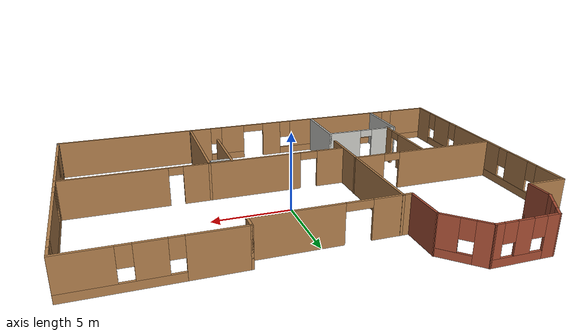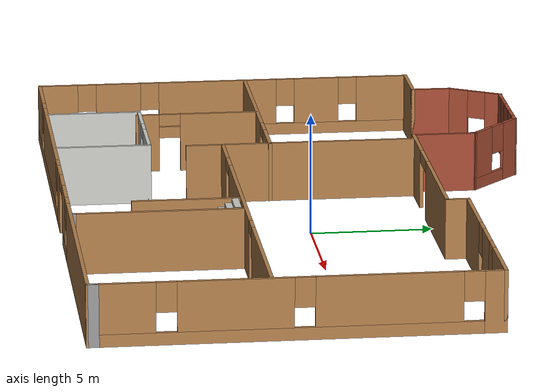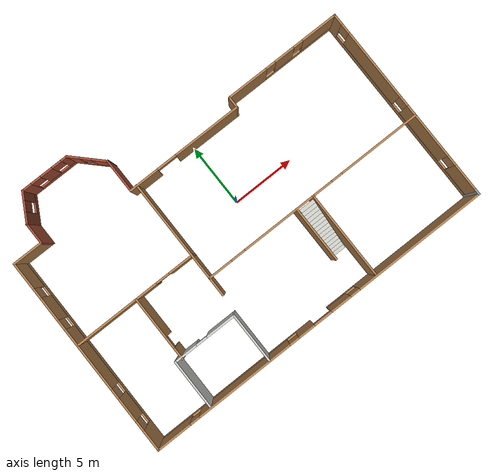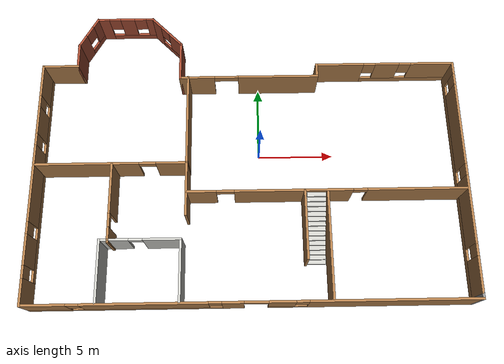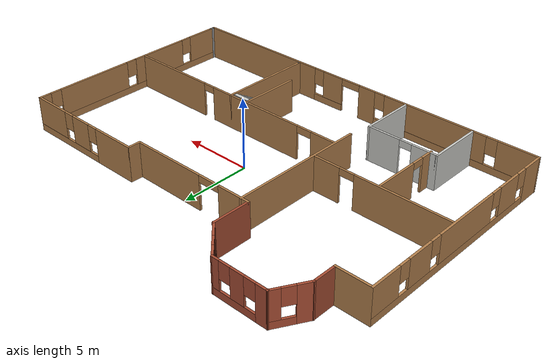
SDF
<sdf version="1.7">
 <model name="MyHome">
  <pose>-0.668255 -0.239098 0 0 -0 0</pose>
  <link name="Stairs_1">
   <visual name="Stairs_1_Visual_0">
    <pose>4.23831 -7.09651 0.083333 0 -0 -3.14159</pose>
    <geometry><box><size>1.2272 0.279705 0.166667</size></box></geometry>
    <material>
     <script><uri>file://media/materials/scripts/gazebo.material</uri><name>Gazebo/CeilingTiled</name></script>
     <ambient>1 1 1 1</ambient>
    </material>
    <meta><layer>0</layer></meta>
   </visual>
   <collision name="Stairs_1_Collision_0">
    <geometry><box><size>1.2272 0.279705 0.166667</size></box></geometry>
    <pose>4.23831 -7.09651 0.083333 0 -0 -3.14159</pose>
   </collision>
   <visual name="Stairs_1_Visual_1">
    <pose>4.23831 -6.8168 0.25 0 -0 -3.14159</pose>
    <geometry><box><size>1.2272 0.279705 0.166667</size></box></geometry>
    <material>
     <script><uri>file://media/materials/scripts/gazebo.material</uri><name>Gazebo/CeilingTiled</name></script>
     <ambient>1 1 1 1</ambient>
    </material>
    <meta><layer>0</layer></meta>
   </visual>
   <collision name="Stairs_1_Collision_1">
    <geometry><box><size>1.2272 0.279705 0.166667</size></box></geometry>
    <pose>4.23831 -6.8168 0.25 0 -0 -3.14159</pose>
   </collision>
   <visual name="Stairs_1_Visual_2">
    <pose>4.23831 -6.5371 0.416667 0 -0 -3.14159</pose>
    <geometry><box><size>1.2272 0.279705 0.166667</size></box></geometry>
    <material>
     <script><uri>file://media/materials/scripts/gazebo.material</uri><name>Gazebo/CeilingTiled</name></script>
     <ambient>1 1 1 1</ambient>
    </material>
    <meta><layer>0</layer></meta>
   </visual>
   <collision name="Stairs_1_Collision_2">
    <geometry><box><size>1.2272 0.279705 0.166667</size></box></geometry>
    <pose>4.23831 -6.5371 0.416667 0 -0 -3.14159</pose>
   </collision>
   <visual name="Stairs_1_Visual_3">
    <pose>4.23831 -6.25739 0.583333 0 -0 -3.14159</pose>
    <geometry><box><size>1.2272 0.279705 0.166667</size></box></geometry>
    <material>
     <script><uri>file://media/materials/scripts/gazebo.material</uri><name>Gazebo/CeilingTiled</name></script>
     <ambient>1 1 1 1</ambient>
    </material>
    <meta><layer>0</layer></meta>
   </visual>
   <collision name="Stairs_1_Collision_3">
    <geometry><box><size>1.2272 0.279705 0.166667</size></box></geometry>
    <pose>4.23831 -6.25739 0.583333 0 -0 -3.14159</pose>
   </collision>
   <visual name="Stairs_1_Visual_4">
    <pose>4.23831 -5.97769 0.75 0 -0 -3.14159</pose>
    <geometry><box><size>1.2272 0.279705 0.166667</size></box></geometry>
    <material>
     <script><uri>file://media/materials/scripts/gazebo.material</uri><name>Gazebo/CeilingTiled</name></script>
     <ambient>1 1 1 1</ambient>
    </material>
    <meta><layer>0</layer></meta>
   </visual>
   <collision name="Stairs_1_Collision_4">
    <geometry><box><size>1.2272 0.279705 0.166667</size></box></geometry>
    <pose>4.23831 -5.97769 0.75 0 -0 -3.14159</pose>
   </collision>
   <visual name="Stairs_1_Visual_5">
    <pose>4.23831 -5.69798 0.916667 0 -0 -3.14159</pose>
    <geometry><box><size>1.2272 0.279705 0.166667</size></box></geometry>
    <material>
     <script><uri>file://media/materials/scripts/gazebo.material</uri><name>Gazebo/CeilingTiled</name></script>
     <ambient>1 1 1 1</ambient>
    </material>
    <meta><layer>0</layer></meta>
   </visual>
   <collision name="Stairs_1_Collision_5">
    <geometry><box><size>1.2272 0.279705 0.166667</size></box></geometry>
    <pose>4.23831 -5.69798 0.916667 0 -0 -3.14159</pose>
   </collision>
   <visual name="Stairs_1_Visual_6">
    <pose>4.23831 -5.41828 1.08333 0 -0 -3.14159</pose>
    <geometry><box><size>1.2272 0.279705 0.166667</size></box></geometry>
    <material>
     <script><uri>file://media/materials/scripts/gazebo.material</uri><name>Gazebo/CeilingTiled</name></script>
     <ambient>1 1 1 1</ambient>
    </material>
    <meta><layer>0</layer></meta>
   </visual>
   <collision name="Stairs_1_Collision_6">
    <geometry><box><size>1.2272 0.279705 0.166667</size></box></geometry>
    <pose>4.23831 -5.41828 1.08333 0 -0 -3.14159</pose>
   </collision>
   <visual name="Stairs_1_Visual_7">
    <pose>4.23831 -5.13857 1.25 0 -0 -3.14159</pose>
    <geometry><box><size>1.2272 0.279705 0.166667</size></box></geometry>
    <material>
     <script><uri>file://media/materials/scripts/gazebo.material</uri><name>Gazebo/CeilingTiled</name></script>
     <ambient>1 1 1 1</ambient>
    </material>
    <meta><layer>0</layer></meta>
   </visual>
   <collision name="Stairs_1_Collision_7">
    <geometry><box><size>1.2272 0.279705 0.166667</size></box></geometry>
    <pose>4.23831 -5.13857 1.25 0 -0 -3.14159</pose>
   </collision>
   <visual name="Stairs_1_Visual_8">
    <pose>4.23831 -4.85887 1.41667 0 -0 -3.14159</pose>
    <geometry><box><size>1.2272 0.279705 0.166667</size></box></geometry>
    <material>
     <script><uri>file://media/materials/scripts/gazebo.material</uri><name>Gazebo/CeilingTiled</name></script>
     <ambient>1 1 1 1</ambient>
    </material>
    <meta><layer>0</layer></meta>
   </visual>
   <collision name="Stairs_1_Collision_8">
    <geometry><box><size>1.2272 0.279705 0.166667</size></box></geometry>
    <pose>4.23831 -4.85887 1.41667 0 -0 -3.14159</pose>
   </collision>
   <visual name="Stairs_1_Visual_9">
    <pose>4.23831 -4.57916 1.58333 0 -0 -3.14159</pose>
    <geometry><box><size>1.2272 0.279705 0.166667</size></box></geometry>
    <material>
     <script><uri>file://media/materials/scripts/gazebo.material</uri><name>Gazebo/CeilingTiled</name></script>
     <ambient>1 1 1 1</ambient>
    </material>
    <meta><layer>0</layer></meta>
   </visual>
   <collision name="Stairs_1_Collision_9">
    <geometry><box><size>1.2272 0.279705 0.166667</size></box></geometry>
    <pose>4.23831 -4.57916 1.58333 0 -0 -3.14159</pose>
   </collision>
   <visual name="Stairs_1_Visual_10">
    <pose>4.23831 -4.29946 1.75 0 -0 -3.14159</pose>
    <geometry><box><size>1.2272 0.279705 0.166667</size></box></geometry>
    <material>
     <script><uri>file://media/materials/scripts/gazebo.material</uri><name>Gazebo/CeilingTiled</name></script>
     <ambient>1 1 1 1</ambient>
    </material>
    <meta><layer>0</layer></meta>
   </visual>
   <collision name="Stairs_1_Collision_10">
    <geometry><box><size>1.2272 0.279705 0.166667</size></box></geometry>
    <pose>4.23831 -4.29946 1.75 0 -0 -3.14159</pose>
   </collision>
   <visual name="Stairs_1_Visual_11">
    <pose>4.23831 -4.01975 1.91667 0 -0 -3.14159</pose>
    <geometry><box><size>1.2272 0.279705 0.166667</size></box></geometry>
    <material>
     <script><uri>file://media/materials/scripts/gazebo.material</uri><name>Gazebo/CeilingTiled</name></script>
     <ambient>1 1 1 1</ambient>
    </material>
    <meta><layer>0</layer></meta>
   </visual>
   <collision name="Stairs_1_Collision_11">
    <geometry><box><size>1.2272 0.279705 0.166667</size></box></geometry>
    <pose>4.23831 -4.01975 1.91667 0 -0 -3.14159</pose>
   </collision>
   <visual name="Stairs_1_Visual_12">
    <pose>4.23831 -3.74005 2.08333 0 -0 -3.14159</pose>
    <geometry><box><size>1.2272 0.279705 0.166667</size></box></geometry>
    <material>
     <script><uri>file://media/materials/scripts/gazebo.material</uri><name>Gazebo/CeilingTiled</name></script>
     <ambient>1 1 1 1</ambient>
    </material>
    <meta><layer>0</layer></meta>
   </visual>
   <collision name="Stairs_1_Collision_12">
    <geometry><box><size>1.2272 0.279705 0.166667</size></box></geometry>
    <pose>4.23831 -3.74005 2.08333 0 -0 -3.14159</pose>
   </collision>
   <visual name="Stairs_1_Visual_13">
    <pose>4.23831 -3.46034 2.25 0 -0 -3.14159</pose>
    <geometry><box><size>1.2272 0.279705 0.166667</size></box></geometry>
    <material>
     <script><uri>file://media/materials/scripts/gazebo.material</uri><name>Gazebo/CeilingTiled</name></script>
     <ambient>1 1 1 1</ambient>
    </material>
    <meta><layer>0</layer></meta>
   </visual>
   <collision name="Stairs_1_Collision_13">
    <geometry><box><size>1.2272 0.279705 0.166667</size></box></geometry>
    <pose>4.23831 -3.46034 2.25 0 -0 -3.14159</pose>
   </collision>
   <visual name="Stairs_1_Visual_14">
    <pose>4.23831 -3.18064 2.41667 0 -0 -3.14159</pose>
    <geometry><box><size>1.2272 0.279705 0.166667</size></box></geometry>
    <material>
     <script><uri>file://media/materials/scripts/gazebo.material</uri><name>Gazebo/CeilingTiled</name></script>
     <ambient>1 1 1 1</ambient>
    </material>
    <meta><layer>0</layer></meta>
   </visual>
   <collision name="Stairs_1_Collision_14">
    <geometry><box><size>1.2272 0.279705 0.166667</size></box></geometry>
    <pose>4.23831 -3.18064 2.41667 0 -0 -3.14159</pose>
   </collision>
  </link>
  <link name="Wall_0">
   <pose>-14.0451 -1.83309 0 0 -0 1.5708</pose>
   <visual name="Wall_0_Visual_0">
    <pose>-7.26027 0 1.25 0 -0 0</pose>
    <geometry><box><size>1.72945 0.15 2.5</size></box></geometry>
    <material>
     <script><uri>file://media/materials/scripts/gazebo.material</uri><name>Gazebo/Wood</name></script>
     <ambient>1 1 1 1</ambient>
    </material>
    <meta><layer>0</layer></meta>
   </visual>
   <collision name="Wall_0_Collision_0">
    <geometry><box><size>1.72945 0.15 2.5</size></box></geometry>
    <pose>-7.26027 0 1.25 0 -0 0</pose>
   </collision>
   <visual name="Wall_0_Visual_1">
    <pose>0.864726 0 0.25 0 -0 0</pose>
    <geometry><box><size>14.5205 0.15 0.5</size></box></geometry>
    <material>
     <script><uri>file://media/materials/scripts/gazebo.material</uri><name>Gazebo/Wood</name></script>
     <ambient>1 1 1 1</ambient>
    </material>
    <meta><layer>0</layer></meta>
   </visual>
   <collision name="Wall_0_Collision_1">
    <geometry><box><size>14.5205 0.15 0.5</size></box></geometry>
    <pose>0.864726 0 0.25 0 -0 0</pose>
   </collision>
   <visual name="Wall_0_Visual_2">
    <pose>-4.62228 0 1.5 0 -0 0</pose>
    <geometry><box><size>1.94653 0.15 2</size></box></geometry>
    <material>
     <script><uri>file://media/materials/scripts/gazebo.material</uri><name>Gazebo/Wood</name></script>
     <ambient>1 1 1 1</ambient>
    </material>
    <meta><layer>0</layer></meta>
   </visual>
   <collision name="Wall_0_Collision_2">
    <geometry><box><size>1.94653 0.15 2</size></box></geometry>
    <pose>-4.62228 0 1.5 0 -0 0</pose>
   </collision>
   <visual name="Wall_0_Visual_3">
    <pose>-0.265957 0 1.5 0 -0 0</pose>
    <geometry><box><size>5.16612 0.15 2</size></box></geometry>
    <material>
     <script><uri>file://media/materials/scripts/gazebo.material</uri><name>Gazebo/Wood</name></script>
     <ambient>1 1 1 1</ambient>
    </material>
    <meta><layer>0</layer></meta>
   </visual>
   <collision name="Wall_0_Collision_3">
    <geometry><box><size>5.16612 0.15 2</size></box></geometry>
    <pose>-0.265957 0 1.5 0 -0 0</pose>
   </collision>
   <visual name="Wall_0_Visual_4">
    <pose>4.0919 0 1.5 0 -0 0</pose>
    <geometry><box><size>1.9496 0.15 2</size></box></geometry>
    <material>
     <script><uri>file://media/materials/scripts/gazebo.material</uri><name>Gazebo/Wood</name></script>
     <ambient>1 1 1 1</ambient>
    </material>
    <meta><layer>0</layer></meta>
   </visual>
   <collision name="Wall_0_Collision_4">
    <geometry><box><size>1.9496 0.15 2</size></box></geometry>
    <pose>4.0919 0 1.5 0 -0 0</pose>
   </collision>
   <visual name="Wall_0_Visual_5">
    <pose>6.99585 0 1.5 0 -0 0</pose>
    <geometry><box><size>2.25829 0.15 2</size></box></geometry>
    <material>
     <script><uri>file://media/materials/scripts/gazebo.material</uri><name>Gazebo/Wood</name></script>
     <ambient>1 1 1 1</ambient>
    </material>
    <meta><layer>0</layer></meta>
   </visual>
   <collision name="Wall_0_Collision_5">
    <geometry><box><size>2.25829 0.15 2</size></box></geometry>
    <pose>6.99585 0 1.5 0 -0 0</pose>
   </collision>
   <visual name="Wall_0_Visual_6">
    <pose>-5.99555 0 1.9 0 -0 0</pose>
    <geometry><box><size>0.8 0.15 1.2</size></box></geometry>
    <material>
     <script><uri>file://media/materials/scripts/gazebo.material</uri><name>Gazebo/Wood</name></script>
     <ambient>1 1 1 1</ambient>
    </material>
    <meta><layer>0</layer></meta>
   </visual>
   <collision name="Wall_0_Collision_6">
    <geometry><box><size>0.8 0.15 1.2</size></box></geometry>
    <pose>-5.99555 0 1.9 0 -0 0</pose>
   </collision>
   <visual name="Wall_0_Visual_7">
    <pose>-3.24902 0 1.9 0 -0 0</pose>
    <geometry><box><size>0.8 0.15 1.2</size></box></geometry>
    <material>
     <script><uri>file://media/materials/scripts/gazebo.material</uri><name>Gazebo/Wood</name></script>
     <ambient>1 1 1 1</ambient>
    </material>
    <meta><layer>0</layer></meta>
   </visual>
   <collision name="Wall_0_Collision_7">
    <geometry><box><size>0.8 0.15 1.2</size></box></geometry>
    <pose>-3.24902 0 1.9 0 -0 0</pose>
   </collision>
   <visual name="Wall_0_Visual_8">
    <pose>2.7171 0 1.9 0 -0 0</pose>
    <geometry><box><size>0.8 0.15 1.2</size></box></geometry>
    <material>
     <script><uri>file://media/materials/scripts/gazebo.material</uri><name>Gazebo/Wood</name></script>
     <ambient>1 1 1 1</ambient>
    </material>
    <meta><layer>0</layer></meta>
   </visual>
   <collision name="Wall_0_Collision_8">
    <geometry><box><size>0.8 0.15 1.2</size></box></geometry>
    <pose>2.7171 0 1.9 0 -0 0</pose>
   </collision>
   <visual name="Wall_0_Visual_9">
    <pose>5.46671 0 1.9 0 -0 0</pose>
    <geometry><box><size>0.8 0.15 1.2</size></box></geometry>
    <material>
     <script><uri>file://media/materials/scripts/gazebo.material</uri><name>Gazebo/Wood</name></script>
     <ambient>1 1 1 1</ambient>
    </material>
    <meta><layer>0</layer></meta>
   </visual>
   <collision name="Wall_0_Collision_9">
    <geometry><box><size>0.8 0.15 1.2</size></box></geometry>
    <pose>5.46671 0 1.9 0 -0 0</pose>
   </collision>
  </link>
  <link name="Wall_1">
   <collision name="Wall_1_Collision">
    <geometry><box><size>2.5 0.15 2.5</size></box></geometry>
    <pose>0 0 1.25 0 -0 0</pose>
   </collision>
   <visual name="Wall_1_Visual">
    <pose>0 0 1.25 0 -0 0</pose>
    <geometry><box><size>2.5 0.15 2.5</size></box></geometry>
    <material>
     <script><uri>file://media/materials/scripts/gazebo.material</uri><name>Gazebo/Wood</name></script>
     <ambient>1 1 1 1</ambient>
    </material>
    <meta><layer>0</layer></meta>
   </visual>
   <pose>-12.8701 6.21691 0 0 -0 0</pose>
  </link>
  <link name="Wall_10">
   <collision name="Wall_10_Collision">
    <geometry><box><size>2.75 0.15 2.5</size></box></geometry>
    <pose>0 0 1.25 0 -0 0</pose>
   </collision>
   <visual name="Wall_10_Visual">
    <pose>0 0 1.25 0 -0 0</pose>
    <geometry><box><size>2.75 0.15 2.5</size></box></geometry>
    <material>
     <script><uri>file://media/materials/scripts/gazebo.material</uri><name>Gazebo/Bricks</name></script>
     <ambient>1 1 1 1</ambient>
    </material>
    <meta><layer>0</layer></meta>
   </visual>
   <pose>-4.65487 6.53682 0 0 -0 -1.5708</pose>
  </link>
  <link name="Wall_11">
   <pose>0.020127 5.23682 0 0 -0 0</pose>
   <visual name="Wall_11_Visual_0">
    <pose>-3.54179 0 1.25 0 -0 0</pose>
    <geometry><box><size>2.41642 0.15 2.5</size></box></geometry>
    <material>
     <script><uri>file://media/materials/scripts/gazebo.material</uri><name>Gazebo/Wood</name></script>
     <ambient>1 1 1 1</ambient>
    </material>
    <meta><layer>0</layer></meta>
   </visual>
   <collision name="Wall_11_Collision_0">
    <geometry><box><size>2.41642 0.15 2.5</size></box></geometry>
    <pose>-3.54179 0 1.25 0 -0 0</pose>
   </collision>
   <visual name="Wall_11_Visual_1">
    <pose>2.0177 0 1.25 0 -0 0</pose>
    <geometry><box><size>5.4646 0.15 2.5</size></box></geometry>
    <material>
     <script><uri>file://media/materials/scripts/gazebo.material</uri><name>Gazebo/Wood</name></script>
     <ambient>1 1 1 1</ambient>
    </material>
    <meta><layer>0</layer></meta>
   </visual>
   <collision name="Wall_11_Collision_1">
    <geometry><box><size>5.4646 0.15 2.5</size></box></geometry>
    <pose>2.0177 0 1.25 0 -0 0</pose>
   </collision>
   <visual name="Wall_11_Visual_2">
    <pose>-1.52408 0 2.25 0 -0 0</pose>
    <geometry><box><size>1.61898 0.15 0.5</size></box></geometry>
    <material>
     <script><uri>file://media/materials/scripts/gazebo.material</uri><name>Gazebo/Wood</name></script>
     <ambient>1 1 1 1</ambient>
    </material>
    <meta><layer>0</layer></meta>
   </visual>
   <collision name="Wall_11_Collision_2">
    <geometry><box><size>1.61898 0.15 0.5</size></box></geometry>
    <pose>-1.52408 0 2.25 0 -0 0</pose>
   </collision>
  </link>
  <link name="Wall_12">
   <collision name="Wall_12_Collision">
    <geometry><box><size>1 0.15 2.5</size></box></geometry>
    <pose>0 0 1.25 0 -0 0</pose>
   </collision>
   <visual name="Wall_12_Visual">
    <pose>0 0 1.25 0 -0 0</pose>
    <geometry><box><size>1 0.15 2.5</size></box></geometry>
    <material>
     <script><uri>file://media/materials/scripts/gazebo.material</uri><name>Gazebo/Wood</name></script>
     <ambient>1 1 1 1</ambient>
    </material>
    <meta><layer>0</layer></meta>
   </visual>
   <pose>4.69513 5.66182 0 0 -0 1.5708</pose>
  </link>
  <link name="Wall_13">
   <pose>9.37013 6.08682 0 0 -0 0</pose>
   <visual name="Wall_13_Visual_0">
    <pose>-3.08641 0 1.25 0 -0 0</pose>
    <geometry><box><size>3.32717 0.15 2.5</size></box></geometry>
    <material>
     <script><uri>file://media/materials/scripts/gazebo.material</uri><name>Gazebo/Wood</name></script>
     <ambient>1 1 1 1</ambient>
    </material>
    <meta><layer>0</layer></meta>
   </visual>
   <collision name="Wall_13_Collision_0">
    <geometry><box><size>3.32717 0.15 2.5</size></box></geometry>
    <pose>-3.08641 0 1.25 0 -0 0</pose>
   </collision>
   <visual name="Wall_13_Visual_1">
    <pose>1.66359 0 0.25 0 -0 0</pose>
    <geometry><box><size>6.17282 0.15 0.5</size></box></geometry>
    <material>
     <script><uri>file://media/materials/scripts/gazebo.material</uri><name>Gazebo/Wood</name></script>
     <ambient>1 1 1 1</ambient>
    </material>
    <meta><layer>0</layer></meta>
   </visual>
   <collision name="Wall_13_Collision_1">
    <geometry><box><size>6.17282 0.15 0.5</size></box></geometry>
    <pose>1.66359 0 0.25 0 -0 0</pose>
   </collision>
   <visual name="Wall_13_Visual_2">
    <pose>0.197364 0 1.5 0 -0 0</pose>
    <geometry><box><size>1.64038 0.15 2</size></box></geometry>
    <material>
     <script><uri>file://media/materials/scripts/gazebo.material</uri><name>Gazebo/Wood</name></script>
     <ambient>1 1 1 1</ambient>
    </material>
    <meta><layer>0</layer></meta>
   </visual>
   <collision name="Wall_13_Collision_2">
    <geometry><box><size>1.64038 0.15 2</size></box></geometry>
    <pose>0.197364 0 1.5 0 -0 0</pose>
   </collision>
   <visual name="Wall_13_Visual_3">
    <pose>3.28378 0 1.5 0 -0 0</pose>
    <geometry><box><size>2.93245 0.15 2</size></box></geometry>
    <material>
     <script><uri>file://media/materials/scripts/gazebo.material</uri><name>Gazebo/Wood</name></script>
     <ambient>1 1 1 1</ambient>
    </material>
    <meta><layer>0</layer></meta>
   </visual>
   <collision name="Wall_13_Collision_3">
    <geometry><box><size>2.93245 0.15 2</size></box></geometry>
    <pose>3.28378 0 1.5 0 -0 0</pose>
   </collision>
   <visual name="Wall_13_Visual_4">
    <pose>-1.02283 0 1.9 0 -0 0</pose>
    <geometry><box><size>0.8 0.15 1.2</size></box></geometry>
    <material>
     <script><uri>file://media/materials/scripts/gazebo.material</uri><name>Gazebo/Wood</name></script>
     <ambient>1 1 1 1</ambient>
    </material>
    <meta><layer>0</layer></meta>
   </visual>
   <collision name="Wall_13_Collision_4">
    <geometry><box><size>0.8 0.15 1.2</size></box></geometry>
    <pose>-1.02283 0 1.9 0 -0 0</pose>
   </collision>
   <visual name="Wall_13_Visual_5">
    <pose>1.41755 0 1.9 0 -0 0</pose>
    <geometry><box><size>0.8 0.15 1.2</size></box></geometry>
    <material>
     <script><uri>file://media/materials/scripts/gazebo.material</uri><name>Gazebo/Wood</name></script>
     <ambient>1 1 1 1</ambient>
    </material>
    <meta><layer>0</layer></meta>
   </visual>
   <collision name="Wall_13_Collision_5">
    <geometry><box><size>0.8 0.15 1.2</size></box></geometry>
    <pose>1.41755 0 1.9 0 -0 0</pose>
   </collision>
  </link>
  <link name="Wall_14">
   <pose>14.0451 -1.71318 0 0 -0 -1.5708</pose>
   <visual name="Wall_14_Visual_0">
    <pose>-7.43229 0 1.25 0 -0 0</pose>
    <geometry><box><size>0.88541 0.15 2.5</size></box></geometry>
    <material>
     <script><uri>file://media/materials/scripts/gazebo.material</uri><name>Gazebo/Wood</name></script>
     <ambient>1 1 1 1</ambient>
    </material>
    <meta><layer>0</layer></meta>
   </visual>
   <collision name="Wall_14_Collision_0">
    <geometry><box><size>0.88541 0.15 2.5</size></box></geometry>
    <pose>-7.43229 0 1.25 0 -0 0</pose>
   </collision>
   <visual name="Wall_14_Visual_1">
    <pose>0.442705 0 0.25 0 -0 0</pose>
    <geometry><box><size>14.8646 0.15 0.5</size></box></geometry>
    <material>
     <script><uri>file://media/materials/scripts/gazebo.material</uri><name>Gazebo/Wood</name></script>
     <ambient>1 1 1 1</ambient>
    </material>
    <meta><layer>0</layer></meta>
   </visual>
   <collision name="Wall_14_Collision_1">
    <geometry><box><size>14.8646 0.15 0.5</size></box></geometry>
    <pose>0.442705 0 0.25 0 -0 0</pose>
   </collision>
   <visual name="Wall_14_Visual_2">
    <pose>-3.34546 0 1.5 0 -0 0</pose>
    <geometry><box><size>5.68826 0.15 2</size></box></geometry>
    <material>
     <script><uri>file://media/materials/scripts/gazebo.material</uri><name>Gazebo/Wood</name></script>
     <ambient>1 1 1 1</ambient>
    </material>
    <meta><layer>0</layer></meta>
   </visual>
   <collision name="Wall_14_Collision_2">
    <geometry><box><size>5.68826 0.15 2</size></box></geometry>
    <pose>-3.34546 0 1.5 0 -0 0</pose>
   </collision>
   <visual name="Wall_14_Visual_3">
    <pose>2.53321 0 1.5 0 -0 0</pose>
    <geometry><box><size>4.46909 0.15 2</size></box></geometry>
    <material>
     <script><uri>file://media/materials/scripts/gazebo.material</uri><name>Gazebo/Wood</name></script>
     <ambient>1 1 1 1</ambient>
    </material>
    <meta><layer>0</layer></meta>
   </visual>
   <collision name="Wall_14_Collision_3">
    <geometry><box><size>4.46909 0.15 2</size></box></geometry>
    <pose>2.53321 0 1.5 0 -0 0</pose>
   </collision>
   <visual name="Wall_14_Visual_4">
    <pose>6.72138 0 1.5 0 -0 0</pose>
    <geometry><box><size>2.30724 0.15 2</size></box></geometry>
    <material>
     <script><uri>file://media/materials/scripts/gazebo.material</uri><name>Gazebo/Wood</name></script>
     <ambient>1 1 1 1</ambient>
    </material>
    <meta><layer>0</layer></meta>
   </visual>
   <collision name="Wall_14_Collision_4">
    <geometry><box><size>2.30724 0.15 2</size></box></geometry>
    <pose>6.72138 0 1.5 0 -0 0</pose>
   </collision>
   <visual name="Wall_14_Visual_5">
    <pose>-6.58959 0 1.9 0 -0 0</pose>
    <geometry><box><size>0.8 0.15 1.2</size></box></geometry>
    <material>
     <script><uri>file://media/materials/scripts/gazebo.material</uri><name>Gazebo/Wood</name></script>
     <ambient>1 1 1 1</ambient>
    </material>
    <meta><layer>0</layer></meta>
   </visual>
   <collision name="Wall_14_Collision_5">
    <geometry><box><size>0.8 0.15 1.2</size></box></geometry>
    <pose>-6.58959 0 1.9 0 -0 0</pose>
   </collision>
   <visual name="Wall_14_Visual_6">
    <pose>-0.101332 0 1.9 0 -0 0</pose>
    <geometry><box><size>0.8 0.15 1.2</size></box></geometry>
    <material>
     <script><uri>file://media/materials/scripts/gazebo.material</uri><name>Gazebo/Wood</name></script>
     <ambient>1 1 1 1</ambient>
    </material>
    <meta><layer>0</layer></meta>
   </visual>
   <collision name="Wall_14_Collision_6">
    <geometry><box><size>0.8 0.15 1.2</size></box></geometry>
    <pose>-0.101332 0 1.9 0 -0 0</pose>
   </collision>
   <visual name="Wall_14_Visual_7">
    <pose>5.16776 0 1.9 0 -0 0</pose>
    <geometry><box><size>0.8 0.15 1.2</size></box></geometry>
    <material>
     <script><uri>file://media/materials/scripts/gazebo.material</uri><name>Gazebo/Wood</name></script>
     <ambient>1 1 1 1</ambient>
    </material>
    <meta><layer>0</layer></meta>
   </visual>
   <collision name="Wall_14_Collision_7">
    <geometry><box><size>0.8 0.15 1.2</size></box></geometry>
    <pose>5.16776 0 1.9 0 -0 0</pose>
   </collision>
  </link>
  <link name="Wall_15">
   <collision name="Wall_15_Collision">
    <geometry><box><size>0.5 0.15 2.5</size></box></geometry>
    <pose>0 0 1.25 0 -0 0</pose>
   </collision>
   <visual name="Wall_15_Visual">
    <pose>0 0 1.25 0 -0 0</pose>
    <geometry><box><size>0.5 0.15 2.5</size></box></geometry>
    <material>
     <script><uri>file://media/materials/scripts/gazebo.material</uri><name>Gazebo/Grey</name></script>
     <ambient>1 1 1 1</ambient>
    </material>
    <meta><layer>0</layer></meta>
   </visual>
   <pose>14.0451 -9.68818 0 0 -0 -1.5708</pose>
  </link>
  <link name="Wall_16">
   <pose>0 -9.87313 0 0 -0 -3.14088</pose>
   <visual name="Wall_16_Visual_0">
    <pose>-8.81676 0 1.25 0 -0 0</pose>
    <geometry><box><size>10.6067 0.15 2.5</size></box></geometry>
    <material>
     <script><uri>file://media/materials/scripts/gazebo.material</uri><name>Gazebo/Wood</name></script>
     <ambient>1 1 1 1</ambient>
    </material>
    <meta><layer>0</layer></meta>
   </visual>
   <collision name="Wall_16_Collision_0">
    <geometry><box><size>10.6067 0.15 2.5</size></box></geometry>
    <pose>-8.81676 0 1.25 0 -0 0</pose>
   </collision>
   <visual name="Wall_16_Visual_1">
    <pose>1.14769 0 1.25 0 -0 0</pose>
    <geometry><box><size>1.35719 0.15 2.5</size></box></geometry>
    <material>
     <script><uri>file://media/materials/scripts/gazebo.material</uri><name>Gazebo/Wood</name></script>
     <ambient>1 1 1 1</ambient>
    </material>
    <meta><layer>0</layer></meta>
   </visual>
   <collision name="Wall_16_Collision_1">
    <geometry><box><size>1.35719 0.15 2.5</size></box></geometry>
    <pose>1.14769 0 1.25 0 -0 0</pose>
   </collision>
   <visual name="Wall_16_Visual_2">
    <pose>-2.27215 0 0.25 0 -0 0</pose>
    <geometry><box><size>2.48248 0.15 0.5</size></box></geometry>
    <material>
     <script><uri>file://media/materials/scripts/gazebo.material</uri><name>Gazebo/Wood</name></script>
     <ambient>1 1 1 1</ambient>
    </material>
    <meta><layer>0</layer></meta>
   </visual>
   <collision name="Wall_16_Collision_2">
    <geometry><box><size>2.48248 0.15 0.5</size></box></geometry>
    <pose>-2.27215 0 0.25 0 -0 0</pose>
   </collision>
   <visual name="Wall_16_Visual_3">
    <pose>7.97321 0 0.25 0 -0 0</pose>
    <geometry><box><size>12.2938 0.15 0.5</size></box></geometry>
    <material>
     <script><uri>file://media/materials/scripts/gazebo.material</uri><name>Gazebo/Wood</name></script>
     <ambient>1 1 1 1</ambient>
    </material>
    <meta><layer>0</layer></meta>
   </visual>
   <collision name="Wall_16_Collision_3">
    <geometry><box><size>12.2938 0.15 0.5</size></box></geometry>
    <pose>7.97321 0 0.25 0 -0 0</pose>
   </collision>
   <visual name="Wall_16_Visual_4">
    <pose>-1.87215 0 1.5 0 -0 0</pose>
    <geometry><box><size>1.68248 0.15 2</size></box></geometry>
    <material>
     <script><uri>file://media/materials/scripts/gazebo.material</uri><name>Gazebo/Wood</name></script>
     <ambient>1 1 1 1</ambient>
    </material>
    <meta><layer>0</layer></meta>
   </visual>
   <collision name="Wall_16_Collision_4">
    <geometry><box><size>1.68248 0.15 2</size></box></geometry>
    <pose>-1.87215 0 1.5 0 -0 0</pose>
   </collision>
   <visual name="Wall_16_Visual_5">
    <pose>-1.87215 0 1.5 0 -0 0</pose>
    <geometry><box><size>1.68248 0.15 2</size></box></geometry>
    <material>
     <script><uri>file://media/materials/scripts/gazebo.material</uri><name>Gazebo/Wood</name></script>
     <ambient>1 1 1 1</ambient>
    </material>
    <meta><layer>0</layer></meta>
   </visual>
   <collision name="Wall_16_Collision_5">
    <geometry><box><size>1.68248 0.15 2</size></box></geometry>
    <pose>-1.87215 0 1.5 0 -0 0</pose>
   </collision>
   <visual name="Wall_16_Visual_6">
    <pose>6.55168 0 1.5 0 -0 0</pose>
    <geometry><box><size>7.85079 0.15 2</size></box></geometry>
    <material>
     <script><uri>file://media/materials/scripts/gazebo.material</uri><name>Gazebo/Wood</name></script>
     <ambient>1 1 1 1</ambient>
    </material>
    <meta><layer>0</layer></meta>
   </visual>
   <collision name="Wall_16_Collision_6">
    <geometry><box><size>7.85079 0.15 2</size></box></geometry>
    <pose>6.55168 0 1.5 0 -0 0</pose>
   </collision>
   <visual name="Wall_16_Visual_7">
    <pose>12.6986 0 1.5 0 -0 0</pose>
    <geometry><box><size>2.84305 0.15 2</size></box></geometry>
    <material>
     <script><uri>file://media/materials/scripts/gazebo.material</uri><name>Gazebo/Wood</name></script>
     <ambient>1 1 1 1</ambient>
    </material>
    <meta><layer>0</layer></meta>
   </visual>
   <collision name="Wall_16_Collision_7">
    <geometry><box><size>2.84305 0.15 2</size></box></geometry>
    <pose>12.6986 0 1.5 0 -0 0</pose>
   </collision>
   <visual name="Wall_16_Visual_8">
    <pose>-3.11339 0 1.9 0 -0 0</pose>
    <geometry><box><size>0.8 0.15 1.2</size></box></geometry>
    <material>
     <script><uri>file://media/materials/scripts/gazebo.material</uri><name>Gazebo/Wood</name></script>
     <ambient>1 1 1 1</ambient>
    </material>
    <meta><layer>0</layer></meta>
   </visual>
   <collision name="Wall_16_Collision_8">
    <geometry><box><size>0.8 0.15 1.2</size></box></geometry>
    <pose>-3.11339 0 1.9 0 -0 0</pose>
   </collision>
   <visual name="Wall_16_Visual_9">
    <pose>2.22629 0 1.9 0 -0 0</pose>
    <geometry><box><size>0.8 0.15 1.2</size></box></geometry>
    <material>
     <script><uri>file://media/materials/scripts/gazebo.material</uri><name>Gazebo/Wood</name></script>
     <ambient>1 1 1 1</ambient>
    </material>
    <meta><layer>0</layer></meta>
   </visual>
   <collision name="Wall_16_Collision_9">
    <geometry><box><size>0.8 0.15 1.2</size></box></geometry>
    <pose>2.22629 0 1.9 0 -0 0</pose>
   </collision>
   <visual name="Wall_16_Visual_10">
    <pose>10.8771 0 1.9 0 -0 0</pose>
    <geometry><box><size>0.8 0.15 1.2</size></box></geometry>
    <material>
     <script><uri>file://media/materials/scripts/gazebo.material</uri><name>Gazebo/Wood</name></script>
     <ambient>1 1 1 1</ambient>
    </material>
    <meta><layer>0</layer></meta>
   </visual>
   <collision name="Wall_16_Collision_10">
    <geometry><box><size>0.8 0.15 1.2</size></box></geometry>
    <pose>10.8771 0 1.9 0 -0 0</pose>
   </collision>
   <visual name="Wall_16_Visual_11">
    <pose>-0.280907 0 2.25 0 -0 0</pose>
    <geometry><box><size>1.5 0.15 0.5</size></box></geometry>
    <material>
     <script><uri>file://media/materials/scripts/gazebo.material</uri><name>Gazebo/Wood</name></script>
     <ambient>1 1 1 1</ambient>
    </material>
    <meta><layer>0</layer></meta>
   </visual>
   <collision name="Wall_16_Collision_11">
    <geometry><box><size>1.5 0.15 0.5</size></box></geometry>
    <pose>-0.280907 0 2.25 0 -0 0</pose>
   </collision>
   <visual name="Wall_16_Visual_12">
    <pose>-0.280907 0 2.25 0 -0 0</pose>
    <geometry><box><size>1.5 0.15 0.5</size></box></geometry>
    <material>
     <script><uri>file://media/materials/scripts/gazebo.material</uri><name>Gazebo/Wood</name></script>
     <ambient>1 1 1 1</ambient>
    </material>
    <meta><layer>0</layer></meta>
   </visual>
   <collision name="Wall_16_Collision_12">
    <geometry><box><size>1.5 0.15 0.5</size></box></geometry>
    <pose>-0.280907 0 2.25 0 -0 0</pose>
   </collision>
  </link>
  <link name="Wall_18">
   <collision name="Wall_18_Collision">
    <geometry><box><size>4 0.15 2.5</size></box></geometry>
    <pose>0 0 1.25 0 -0 0</pose>
   </collision>
   <visual name="Wall_18_Visual">
    <pose>0 0 1.25 0 -0 0</pose>
    <geometry><box><size>4 0.15 2.5</size></box></geometry>
    <material>
     <script><uri>file://media/materials/scripts/gazebo.material</uri><name>Gazebo/CeilingTiled</name></script>
     <ambient>1 1 1 1</ambient>
    </material>
    <meta><layer>0</layer></meta>
   </visual>
   <pose>-9.48977 -7.85645 0 0 -0 1.5708</pose>
  </link>
  <link name="Wall_19">
   <pose>-6.93977 -5.93145 0 0 -0 0</pose>
   <visual name="Wall_19_Visual_0">
    <pose>-1.67104 0 1.25 0 -0 0</pose>
    <geometry><box><size>1.90791 0.15 2.5</size></box></geometry>
    <material>
     <script><uri>file://media/materials/scripts/gazebo.material</uri><name>Gazebo/CeilingTiled</name></script>
     <ambient>1 1 1 1</ambient>
    </material>
    <meta><layer>0</layer></meta>
   </visual>
   <collision name="Wall_19_Collision_0">
    <geometry><box><size>1.90791 0.15 2.5</size></box></geometry>
    <pose>-1.67104 0 1.25 0 -0 0</pose>
   </collision>
   <visual name="Wall_19_Visual_1">
    <pose>1.40396 0 1.25 0 -0 0</pose>
    <geometry><box><size>2.44209 0.15 2.5</size></box></geometry>
    <material>
     <script><uri>file://media/materials/scripts/gazebo.material</uri><name>Gazebo/CeilingTiled</name></script>
     <ambient>1 1 1 1</ambient>
    </material>
    <meta><layer>0</layer></meta>
   </visual>
   <collision name="Wall_19_Collision_1">
    <geometry><box><size>2.44209 0.15 2.5</size></box></geometry>
    <pose>1.40396 0 1.25 0 -0 0</pose>
   </collision>
   <visual name="Wall_19_Visual_2">
    <pose>-0.267089 0 2.25 0 -0 0</pose>
    <geometry><box><size>0.9 0.15 0.5</size></box></geometry>
    <material>
     <script><uri>file://media/materials/scripts/gazebo.material</uri><name>Gazebo/CeilingTiled</name></script>
     <ambient>1 1 1 1</ambient>
    </material>
    <meta><layer>0</layer></meta>
   </visual>
   <collision name="Wall_19_Collision_2">
    <geometry><box><size>0.9 0.15 0.5</size></box></geometry>
    <pose>-0.267089 0 2.25 0 -0 0</pose>
   </collision>
  </link>
  <link name="Wall_20">
   <collision name="Wall_20_Collision">
    <geometry><box><size>4 0.15 2.5</size></box></geometry>
    <pose>0 0 1.25 0 -0 0</pose>
   </collision>
   <visual name="Wall_20_Visual">
    <pose>0 0 1.25 0 -0 0</pose>
    <geometry><box><size>4 0.15 2.5</size></box></geometry>
    <material>
     <script><uri>file://media/materials/scripts/gazebo.material</uri><name>Gazebo/CeilingTiled</name></script>
     <ambient>1 1 1 1</ambient>
    </material>
    <meta><layer>0</layer></meta>
   </visual>
   <pose>-4.38977 -7.85645 0 0 -0 -1.5708</pose>
  </link>
  <link name="Wall_23">
   <pose>-8.9665 -3.49191 0 0 -0 -1.5708</pose>
   <visual name="Wall_23_Visual_0">
    <pose>-0.951987 0 1.25 0 -0 0</pose>
    <geometry><box><size>3.34603 0.15 2.5</size></box></geometry>
    <material>
     <script><uri>file://media/materials/scripts/gazebo.material</uri><name>Gazebo/Wood</name></script>
     <ambient>1 1 1 1</ambient>
    </material>
    <meta><layer>0</layer></meta>
   </visual>
   <collision name="Wall_23_Collision_0">
    <geometry><box><size>3.34603 0.15 2.5</size></box></geometry>
    <pose>-0.951987 0 1.25 0 -0 0</pose>
   </collision>
   <visual name="Wall_23_Visual_1">
    <pose>2.12301 0 1.25 0 -0 0</pose>
    <geometry><box><size>1.00397 0.15 2.5</size></box></geometry>
    <material>
     <script><uri>file://media/materials/scripts/gazebo.material</uri><name>Gazebo/Wood</name></script>
     <ambient>1 1 1 1</ambient>
    </material>
    <meta><layer>0</layer></meta>
   </visual>
   <collision name="Wall_23_Collision_1">
    <geometry><box><size>1.00397 0.15 2.5</size></box></geometry>
    <pose>2.12301 0 1.25 0 -0 0</pose>
   </collision>
   <visual name="Wall_23_Visual_2">
    <pose>1.17103 0 2.25 0 -0 0</pose>
    <geometry><box><size>0.9 0.15 0.5</size></box></geometry>
    <material>
     <script><uri>file://media/materials/scripts/gazebo.material</uri><name>Gazebo/Wood</name></script>
     <ambient>1 1 1 1</ambient>
    </material>
    <meta><layer>0</layer></meta>
   </visual>
   <collision name="Wall_23_Collision_2">
    <geometry><box><size>0.9 0.15 0.5</size></box></geometry>
    <pose>1.17103 0 2.25 0 -0 0</pose>
   </collision>
  </link>
  <link name="Wall_27">
   <collision name="Wall_27_Collision">
    <geometry><box><size>9.75 0.15 2.5</size></box></geometry>
    <pose>0 0 1.25 0 -0 0</pose>
   </collision>
   <visual name="Wall_27_Visual">
    <pose>0 0 1.25 0 -0 0</pose>
    <geometry><box><size>9.75 0.15 2.5</size></box></geometry>
    <material>
     <script><uri>file://media/materials/scripts/gazebo.material</uri><name>Gazebo/Wood</name></script>
     <ambient>1 1 1 1</ambient>
    </material>
    <meta><layer>0</layer></meta>
   </visual>
   <pose>-4.10966 0.455685 0 0 -0 -1.5708</pose>
  </link>
  <link name="Wall_29">
   <pose>4.98079 -2.87589 0 0 -0 0</pose>
   <visual name="Wall_29_Visual_0">
    <pose>-8.13754 0 1.25 0 -0 0</pose>
    <geometry><box><size>1.97493 0.15 2.5</size></box></geometry>
    <material>
     <script><uri>file://media/materials/scripts/gazebo.material</uri><name>Gazebo/Wood</name></script>
     <ambient>1 1 1 1</ambient>
    </material>
    <meta><layer>0</layer></meta>
   </visual>
   <collision name="Wall_29_Collision_0">
    <geometry><box><size>1.97493 0.15 2.5</size></box></geometry>
    <pose>-8.13754 0 1.25 0 -0 0</pose>
   </collision>
   <visual name="Wall_29_Visual_1">
    <pose>-2.16879 0 1.25 0 -0 0</pose>
    <geometry><box><size>7.65792 0.15 2.5</size></box></geometry>
    <material>
     <script><uri>file://media/materials/scripts/gazebo.material</uri><name>Gazebo/Wood</name></script>
     <ambient>1 1 1 1</ambient>
    </material>
    <meta><layer>0</layer></meta>
   </visual>
   <collision name="Wall_29_Collision_1">
    <geometry><box><size>7.65792 0.15 2.5</size></box></geometry>
    <pose>-2.16879 0 1.25 0 -0 0</pose>
   </collision>
   <visual name="Wall_29_Visual_2">
    <pose>5.84258 0 1.25 0 -0 0</pose>
    <geometry><box><size>6.56483 0.15 2.5</size></box></geometry>
    <material>
     <script><uri>file://media/materials/scripts/gazebo.material</uri><name>Gazebo/Wood</name></script>
     <ambient>1 1 1 1</ambient>
    </material>
    <meta><layer>0</layer></meta>
   </visual>
   <collision name="Wall_29_Collision_2">
    <geometry><box><size>6.56483 0.15 2.5</size></box></geometry>
    <pose>5.84258 0 1.25 0 -0 0</pose>
   </collision>
   <visual name="Wall_29_Visual_3">
    <pose>-6.57391 0 2.25 0 -0 0</pose>
    <geometry><box><size>1.15233 0.15 0.5</size></box></geometry>
    <material>
     <script><uri>file://media/materials/scripts/gazebo.material</uri><name>Gazebo/Wood</name></script>
     <ambient>1 1 1 1</ambient>
    </material>
    <meta><layer>0</layer></meta>
   </visual>
   <collision name="Wall_29_Collision_3">
    <geometry><box><size>1.15233 0.15 0.5</size></box></geometry>
    <pose>-6.57391 0 2.25 0 -0 0</pose>
   </collision>
   <visual name="Wall_29_Visual_4">
    <pose>2.11017 0 2.25 0 -0 0</pose>
    <geometry><box><size>0.9 0.15 0.5</size></box></geometry>
    <material>
     <script><uri>file://media/materials/scripts/gazebo.material</uri><name>Gazebo/Wood</name></script>
     <ambient>1 1 1 1</ambient>
    </material>
    <meta><layer>0</layer></meta>
   </visual>
   <collision name="Wall_29_Collision_4">
    <geometry><box><size>0.9 0.15 0.5</size></box></geometry>
    <pose>2.11017 0 2.25 0 -0 0</pose>
   </collision>
  </link>
  <link name="Wall_31">
   <collision name="Wall_31_Collision">
    <geometry><box><size>7 0.15 2.5</size></box></geometry>
    <pose>0 0 1.25 0 -0 0</pose>
   </collision>
   <visual name="Wall_31_Visual">
    <pose>0 0 1.25 0 -0 0</pose>
    <geometry><box><size>7 0.15 2.5</size></box></geometry>
    <material>
     <script><uri>file://media/materials/scripts/gazebo.material</uri><name>Gazebo/Wood</name></script>
     <ambient>1 1 1 1</ambient>
    </material>
    <meta><layer>0</layer></meta>
   </visual>
   <pose>4.99284 -6.30089 0 0 -0 -1.5708</pose>
  </link>
  <link name="Wall_32">
   <collision name="Wall_32_Collision">
    <geometry><box><size>0.15 0.15 2.5</size></box></geometry>
    <pose>0 0 1.25 0 -0 0</pose>
   </collision>
   <visual name="Wall_32_Visual">
    <pose>0 0 1.25 0 -0 0</pose>
    <geometry><box><size>0.15 0.15 2.5</size></box></geometry>
    <material>
     <script><uri>file://media/materials/scripts/gazebo.material</uri><name>Gazebo/Grey</name></script>
     <ambient>1 1 1 1</ambient>
    </material>
    <meta><layer>0</layer></meta>
   </visual>
   <pose>4.99284 -9.72589 0 0 -0 0</pose>
  </link>
  <link name="Wall_35">
   <pose>-9.01722 -0.899311 0 0 -0 3.14159</pose>
   <visual name="Wall_35_Visual_0">
    <pose>-3.94946 0 1.25 0 -0 0</pose>
    <geometry><box><size>2.10107 0.15 2.5</size></box></geometry>
    <material>
     <script><uri>file://media/materials/scripts/gazebo.material</uri><name>Gazebo/Wood</name></script>
     <ambient>1 1 1 1</ambient>
    </material>
    <meta><layer>0</layer></meta>
   </visual>
   <collision name="Wall_35_Collision_0">
    <geometry><box><size>2.10107 0.15 2.5</size></box></geometry>
    <pose>-3.94946 0 1.25 0 -0 0</pose>
   </collision>
   <visual name="Wall_35_Visual_1">
    <pose>1.59508 0 1.25 0 -0 0</pose>
    <geometry><box><size>6.80983 0.15 2.5</size></box></geometry>
    <material>
     <script><uri>file://media/materials/scripts/gazebo.material</uri><name>Gazebo/Wood</name></script>
     <ambient>1 1 1 1</ambient>
    </material>
    <meta><layer>0</layer></meta>
   </visual>
   <collision name="Wall_35_Collision_1">
    <geometry><box><size>6.80983 0.15 2.5</size></box></geometry>
    <pose>1.59508 0 1.25 0 -0 0</pose>
   </collision>
   <visual name="Wall_35_Visual_2">
    <pose>-2.35438 0 2.25 0 -0 0</pose>
    <geometry><box><size>1.0891 0.15 0.5</size></box></geometry>
    <material>
     <script><uri>file://media/materials/scripts/gazebo.material</uri><name>Gazebo/Wood</name></script>
     <ambient>1 1 1 1</ambient>
    </material>
    <meta><layer>0</layer></meta>
   </visual>
   <collision name="Wall_35_Collision_2">
    <geometry><box><size>1.0891 0.15 0.5</size></box></geometry>
    <pose>-2.35438 0 2.25 0 -0 0</pose>
   </collision>
  </link>
  <link name="Wall_37">
   <collision name="Wall_37_Collision">
    <geometry><box><size>4.5 0.15 2.5</size></box></geometry>
    <pose>0 0 1.25 0 -0 0</pose>
   </collision>
   <visual name="Wall_37_Visual">
    <pose>0 0 1.25 0 -0 0</pose>
    <geometry><box><size>4.5 0.15 2.5</size></box></geometry>
    <material>
     <script><uri>file://media/materials/scripts/gazebo.material</uri><name>Gazebo/Wood</name></script>
     <ambient>1 1 1 1</ambient>
    </material>
    <meta><layer>0</layer></meta>
   </visual>
   <pose>3.53355 -5.07983 0 0 -0 -1.5708</pose>
  </link>
  <link name="Wall_6">
   <collision name="Wall_6_Collision">
    <geometry><box><size>1.75 0.15 2.5</size></box></geometry>
    <pose>0 0 1.25 0 -0 0</pose>
   </collision>
   <visual name="Wall_6_Visual">
    <pose>0 0 1.25 0 -0 0</pose>
    <geometry><box><size>1.75 0.15 2.5</size></box></geometry>
    <material>
     <script><uri>file://media/materials/scripts/gazebo.material</uri><name>Gazebo/Bricks</name></script>
     <ambient>1 1 1 1</ambient>
    </material>
    <meta><layer>0</layer></meta>
   </visual>
   <pose>-11.6951 7.01691 0 0 -0 1.5708</pose>
  </link>
  <link name="Wall_7">
   <pose>-11.1076 8.83449 0 0 -0 1.0472</pose>
   <visual name="Wall_7_Visual_0">
    <pose>-0.770976 0 1.25 0 -0 0</pose>
    <geometry><box><size>0.958049 0.15 2.5</size></box></geometry>
    <material>
     <script><uri>file://media/materials/scripts/gazebo.material</uri><name>Gazebo/Bricks</name></script>
     <ambient>1 1 1 1</ambient>
    </material>
    <meta><layer>0</layer></meta>
   </visual>
   <collision name="Wall_7_Collision_0">
    <geometry><box><size>0.958049 0.15 2.5</size></box></geometry>
    <pose>-0.770976 0 1.25 0 -0 0</pose>
   </collision>
   <visual name="Wall_7_Visual_1">
    <pose>0.479024 0 0.25 0 -0 0</pose>
    <geometry><box><size>1.54195 0.15 0.5</size></box></geometry>
    <material>
     <script><uri>file://media/materials/scripts/gazebo.material</uri><name>Gazebo/Bricks</name></script>
     <ambient>1 1 1 1</ambient>
    </material>
    <meta><layer>0</layer></meta>
   </visual>
   <collision name="Wall_7_Collision_1">
    <geometry><box><size>1.54195 0.15 0.5</size></box></geometry>
    <pose>0.479024 0 0.25 0 -0 0</pose>
   </collision>
   <visual name="Wall_7_Visual_2">
    <pose>0.879024 0 1.5 0 -0 0</pose>
    <geometry><box><size>0.741951 0.15 2</size></box></geometry>
    <material>
     <script><uri>file://media/materials/scripts/gazebo.material</uri><name>Gazebo/Bricks</name></script>
     <ambient>1 1 1 1</ambient>
    </material>
    <meta><layer>0</layer></meta>
   </visual>
   <collision name="Wall_7_Collision_2">
    <geometry><box><size>0.741951 0.15 2</size></box></geometry>
    <pose>0.879024 0 1.5 0 -0 0</pose>
   </collision>
   <visual name="Wall_7_Visual_3">
    <pose>0.108049 0 1.9 0 -0 0</pose>
    <geometry><box><size>0.8 0.15 1.2</size></box></geometry>
    <material>
     <script><uri>file://media/materials/scripts/gazebo.material</uri><name>Gazebo/Bricks</name></script>
     <ambient>1 1 1 1</ambient>
    </material>
    <meta><layer>0</layer></meta>
   </visual>
   <collision name="Wall_7_Collision_3">
    <geometry><box><size>0.8 0.15 1.2</size></box></geometry>
    <pose>0.108049 0 1.9 0 -0 0</pose>
   </collision>
  </link>
  <link name="Wall_8">
   <pose>-8.59513 9.85207 0 0 -0 0</pose>
   <visual name="Wall_8_Visual_0">
    <pose>-1.57611 0 1.25 0 -0 0</pose>
    <geometry><box><size>0.847784 0.15 2.5</size></box></geometry>
    <material>
     <script><uri>file://media/materials/scripts/gazebo.material</uri><name>Gazebo/Bricks</name></script>
     <ambient>1 1 1 1</ambient>
    </material>
    <meta><layer>0</layer></meta>
   </visual>
   <collision name="Wall_8_Collision_0">
    <geometry><box><size>0.847784 0.15 2.5</size></box></geometry>
    <pose>-1.57611 0 1.25 0 -0 0</pose>
   </collision>
   <visual name="Wall_8_Visual_1">
    <pose>0.423892 0 0.25 0 -0 0</pose>
    <geometry><box><size>3.15222 0.15 0.5</size></box></geometry>
    <material>
     <script><uri>file://media/materials/scripts/gazebo.material</uri><name>Gazebo/Bricks</name></script>
     <ambient>1 1 1 1</ambient>
    </material>
    <meta><layer>0</layer></meta>
   </visual>
   <collision name="Wall_8_Collision_1">
    <geometry><box><size>3.15222 0.15 0.5</size></box></geometry>
    <pose>0.423892 0 0.25 0 -0 0</pose>
   </collision>
   <visual name="Wall_8_Visual_2">
    <pose>0.136814 0 1.5 0 -0 0</pose>
    <geometry><box><size>0.978061 0.15 2</size></box></geometry>
    <material>
     <script><uri>file://media/materials/scripts/gazebo.material</uri><name>Gazebo/Bricks</name></script>
     <ambient>1 1 1 1</ambient>
    </material>
    <meta><layer>0</layer></meta>
   </visual>
   <collision name="Wall_8_Collision_2">
    <geometry><box><size>0.978061 0.15 2</size></box></geometry>
    <pose>0.136814 0 1.5 0 -0 0</pose>
   </collision>
   <visual name="Wall_8_Visual_3">
    <pose>1.71292 0 1.5 0 -0 0</pose>
    <geometry><box><size>0.574155 0.15 2</size></box></geometry>
    <material>
     <script><uri>file://media/materials/scripts/gazebo.material</uri><name>Gazebo/Bricks</name></script>
     <ambient>1 1 1 1</ambient>
    </material>
    <meta><layer>0</layer></meta>
   </visual>
   <collision name="Wall_8_Collision_3">
    <geometry><box><size>0.574155 0.15 2</size></box></geometry>
    <pose>1.71292 0 1.5 0 -0 0</pose>
   </collision>
   <visual name="Wall_8_Visual_4">
    <pose>-0.752216 0 1.9 0 -0 0</pose>
    <geometry><box><size>0.8 0.15 1.2</size></box></geometry>
    <material>
     <script><uri>file://media/materials/scripts/gazebo.material</uri><name>Gazebo/Bricks</name></script>
     <ambient>1 1 1 1</ambient>
    </material>
    <meta><layer>0</layer></meta>
   </visual>
   <collision name="Wall_8_Collision_4">
    <geometry><box><size>0.8 0.15 1.2</size></box></geometry>
    <pose>-0.752216 0 1.9 0 -0 0</pose>
   </collision>
   <visual name="Wall_8_Visual_5">
    <pose>1.02584 0 1.9 0 -0 0</pose>
    <geometry><box><size>0.8 0.15 1.2</size></box></geometry>
    <material>
     <script><uri>file://media/materials/scripts/gazebo.material</uri><name>Gazebo/Bricks</name></script>
     <ambient>1 1 1 1</ambient>
    </material>
    <meta><layer>0</layer></meta>
   </visual>
   <collision name="Wall_8_Collision_5">
    <geometry><box><size>0.8 0.15 1.2</size></box></geometry>
    <pose>1.02584 0 1.9 0 -0 0</pose>
   </collision>
  </link>
  <link name="Wall_9">
   <pose>-5.6625 8.84445 0 0 -0 -0.785398</pose>
   <visual name="Wall_9_Visual_0">
    <pose>-1.01292 0 1.25 0 -0 0</pose>
    <geometry><box><size>0.97416 0.15 2.5</size></box></geometry>
    <material>
     <script><uri>file://media/materials/scripts/gazebo.material</uri><name>Gazebo/Bricks</name></script>
     <ambient>1 1 1 1</ambient>
    </material>
    <meta><layer>0</layer></meta>
   </visual>
   <collision name="Wall_9_Collision_0">
    <geometry><box><size>0.97416 0.15 2.5</size></box></geometry>
    <pose>-1.01292 0 1.25 0 -0 0</pose>
   </collision>
   <visual name="Wall_9_Visual_1">
    <pose>0.48708 0 0.25 0 -0 0</pose>
    <geometry><box><size>2.02584 0.15 0.5</size></box></geometry>
    <material>
     <script><uri>file://media/materials/scripts/gazebo.material</uri><name>Gazebo/Bricks</name></script>
     <ambient>1 1 1 1</ambient>
    </material>
    <meta><layer>0</layer></meta>
   </visual>
   <collision name="Wall_9_Collision_1">
    <geometry><box><size>2.02584 0.15 0.5</size></box></geometry>
    <pose>0.48708 0 0.25 0 -0 0</pose>
   </collision>
   <visual name="Wall_9_Visual_2">
    <pose>0.88708 0 1.5 0 -0 0</pose>
    <geometry><box><size>1.22584 0.15 2</size></box></geometry>
    <material>
     <script><uri>file://media/materials/scripts/gazebo.material</uri><name>Gazebo/Bricks</name></script>
     <ambient>1 1 1 1</ambient>
    </material>
    <meta><layer>0</layer></meta>
   </visual>
   <collision name="Wall_9_Collision_2">
    <geometry><box><size>1.22584 0.15 2</size></box></geometry>
    <pose>0.88708 0 1.5 0 -0 0</pose>
   </collision>
   <visual name="Wall_9_Visual_3">
    <pose>-0.12584 0 1.9 0 -0 0</pose>
    <geometry><box><size>0.8 0.15 1.2</size></box></geometry>
    <material>
     <script><uri>file://media/materials/scripts/gazebo.material</uri><name>Gazebo/Bricks</name></script>
     <ambient>1 1 1 1</ambient>
    </material>
    <meta><layer>0</layer></meta>
   </visual>
   <collision name="Wall_9_Collision_3">
    <geometry><box><size>0.8 0.15 1.2</size></box></geometry>
    <pose>-0.12584 0 1.9 0 -0 0</pose>
   </collision>
  </link>
  <static>1</static>
 </model>
</sdf>
